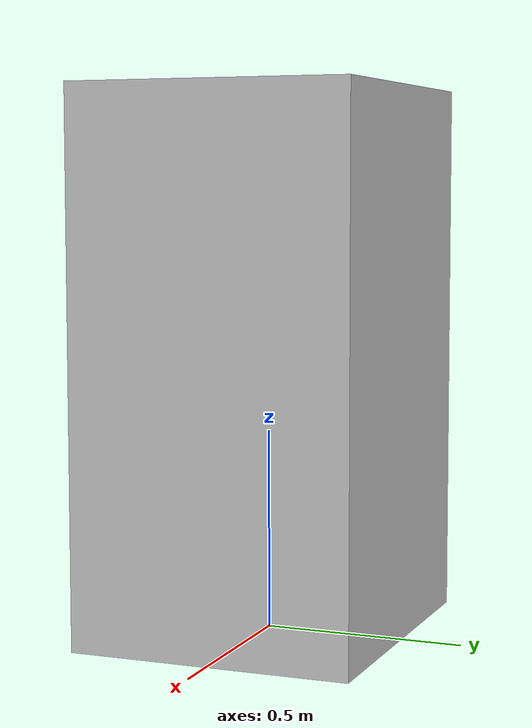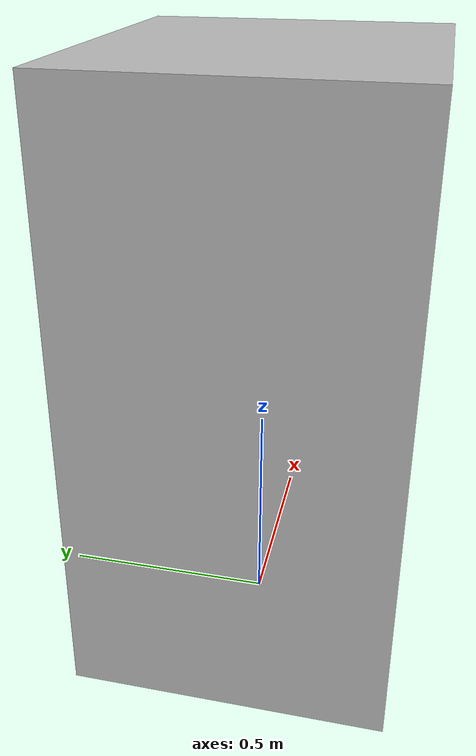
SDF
<?xml version="1.0"?>
<sdf version="1.6">
  <model name="laptop_case">
    <link name="1_link">
      <collision name="1_col">
        <geometry>
          <box>
            <size>0.8 0.7 1.35</size>
          </box>
        </geometry>
      </collision>
      <visual name="1_vis">
        <geometry>
          <box>
            <size>0.8 0.7 1.35</size>
          </box>
        </geometry>
      </visual>
      <pose>0.0 0.0 0.675 0 0 0</pose>
    </link>
    <static>true</static>
  </model>
</sdf>
